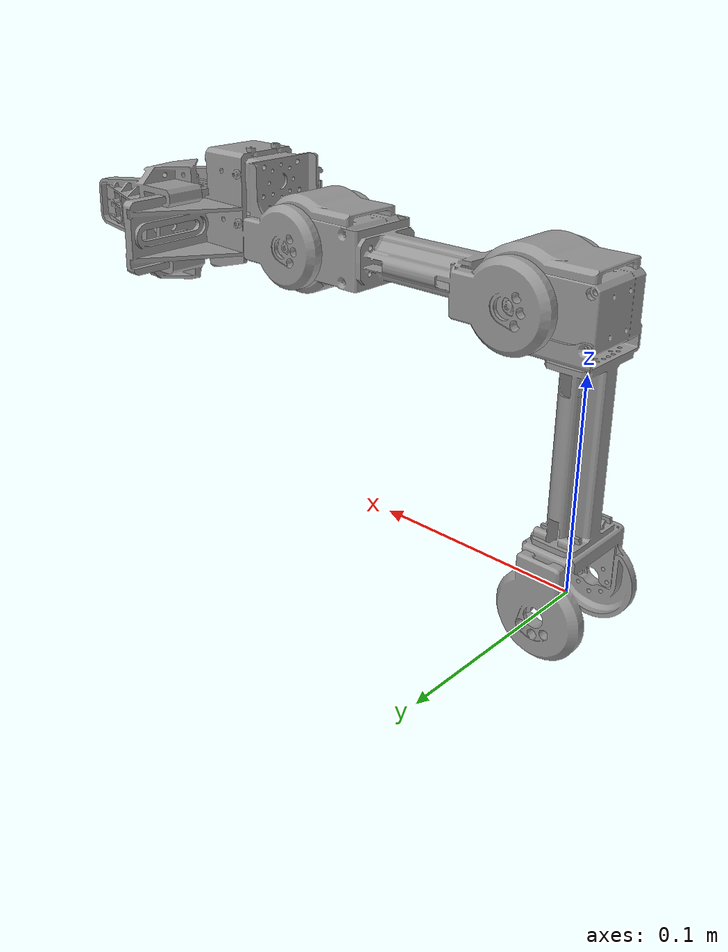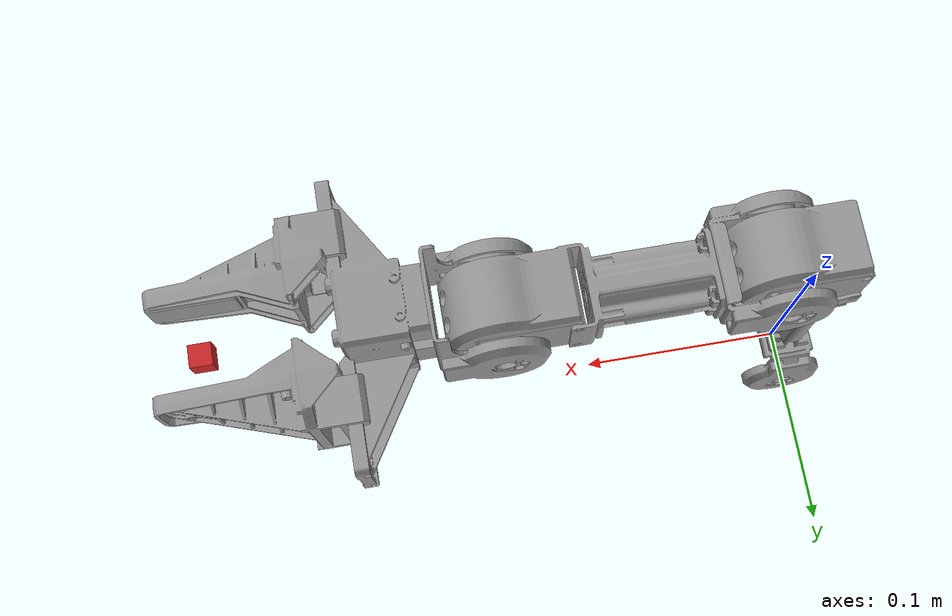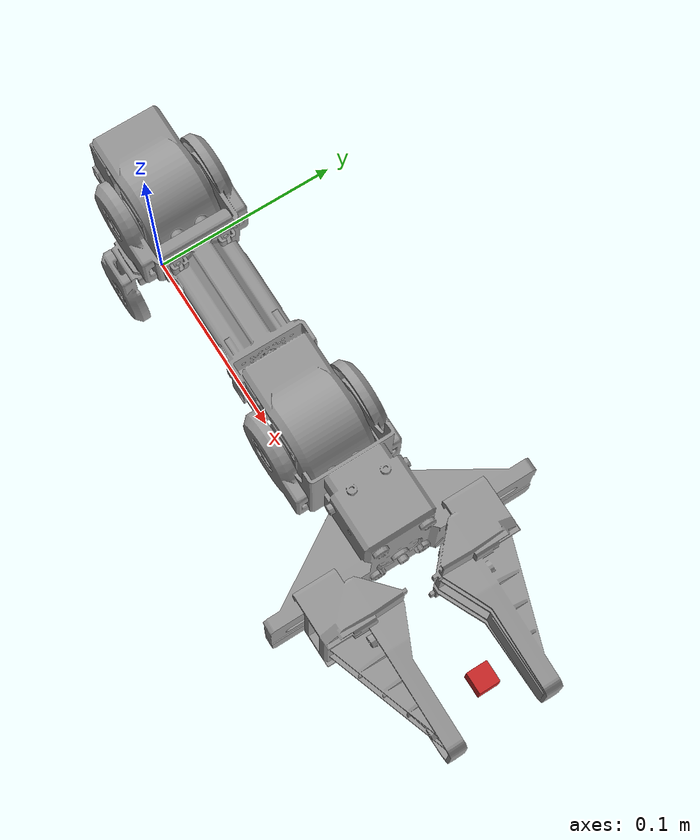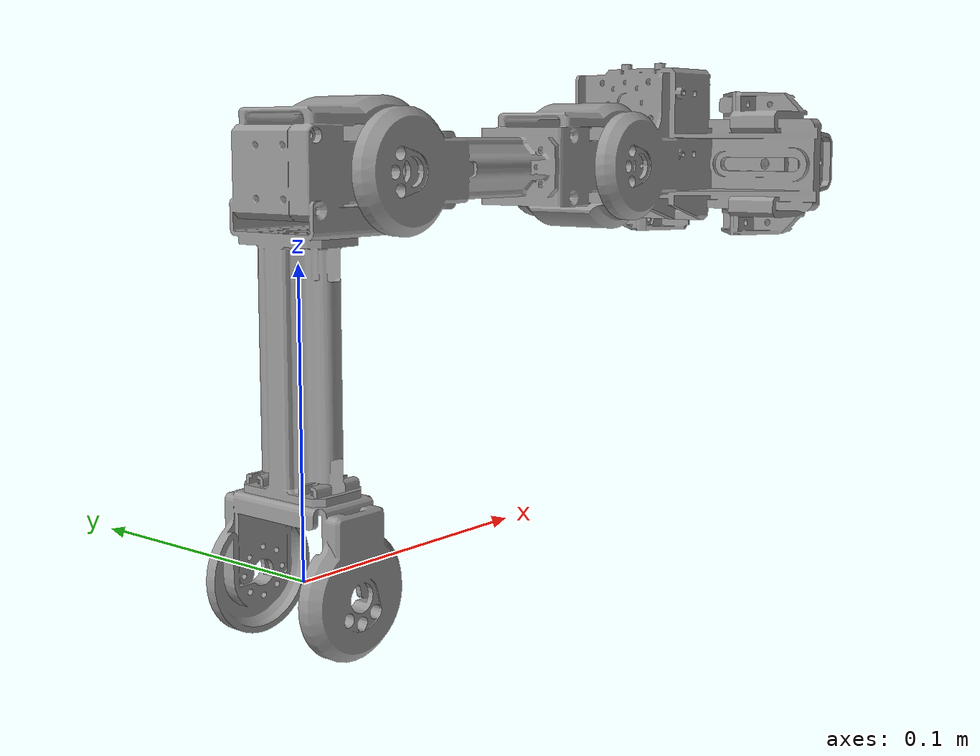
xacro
<?xml version="1.0"?>
<!-- Open_Manipulator Chain -->
<robot xmlns:xacro="http://ros.org/wiki/xacro">

  <!--  Link 3 -->
  <link name="link3">
    <visual>
      <origin xyz="0 0 0" rpy="0 0 0"/>
      <geometry>
        <mesh filename="package://open_manipulator_description/meshes/chain_link3.stl" scale="0.001 0.001 0.001"/>
      </geometry>
      <material name="grey"/>
    </visual>

    <collision>
      <origin xyz="0 0 0" rpy="0 0 0"/>
      <geometry>
        <mesh filename="package://open_manipulator_description/meshes/chain_link3.stl" scale="0.001 0.001 0.001"/>
      </geometry>
    </collision>

    <inertial>
      <origin xyz="1.0308393e-02 3.7743363e-04 1.0170197e-01" />
      <mass value="1.3850917e-01" />
      <inertia ixx="3.3055381e-04" ixy="-9.7940978e-08" ixz="-3.8505711e-05"
               iyy="3.4290447e-04" iyz="-1.5717516e-06"
               izz="6.0346498e-05" />
    </inertial>
  </link>

  <!--  Joint 3 -->
  <joint name="joint3" type="revolute">
    <parent link="link3"/>
    <child link="link4"/>
    <origin xyz="0.024 0 0.128" rpy="0 0 0"/>
    <axis xyz="0 1 0"/>
    <limit velocity="4.8" effort="1" lower="${-pi*0.3}" upper="${pi*0.44}" />
  </joint>

  <!--  Link 4 -->
  <link name="link4">
    <visual>
      <origin xyz="0 0 0" rpy="0 0 0"/>
      <geometry>
        <mesh filename="package://open_manipulator_description/meshes/chain_link4.stl" scale="0.001 0.001 0.001"/>
      </geometry>
      <material name="grey"/>
    </visual>

    <collision>
      <origin xyz="0 0 0" rpy="0 0 0"/>
      <geometry>
        <mesh filename="package://open_manipulator_description/meshes/chain_link4.stl" scale="0.001 0.001 0.001"/>
      </geometry>
    </collision>

    <inertial>
      <origin xyz="9.0909590e-02 3.8929816e-04 2.2413279e-04" />
      <mass value="1.3274562e-01" />
      <inertia ixx="3.0654178e-05" ixy="-1.2764155e-06" ixz="-2.6874417e-07"
               iyy="2.4230292e-04" iyz="1.1559550e-08"
               izz="2.5155057e-04" />
    </inertial>
  </link>

  <!--  Joint 4 -->
  <joint name="joint4" type="revolute">
    <parent link="link4"/>
    <child link="link5"/>
    <origin xyz="0.124 0.0 0.0" rpy="0 0 0"/>
    <axis xyz="0 1 0"/>
    <limit velocity="4.8" effort="1" lower="${-pi*0.57}" upper="${pi*0.65}" />
  </joint>

  <!--  Link 5 -->
  <link name="link5">
    <visual>
      <origin xyz="0 0 0" rpy="0 0 0"/>
      <geometry>
        <mesh filename="package://open_manipulator_description/meshes/chain_link5.stl" scale="0.001 0.001 0.001"/>
      </geometry>
      <material name="grey"/>
    </visual>

    <collision>
      <origin xyz="0 0 0" rpy="0 0 0"/>
      <geometry>
        <mesh filename="package://open_manipulator_description/meshes/chain_link5.stl" scale="0.001 0.001 0.001"/>
      </geometry>
    </collision>

    <inertial>
      <origin xyz="4.4206755e-02 3.6839985e-07 8.9142216e-03" />
      <mass value="1.4327573e-01" />
      <inertia ixx="8.0870749e-05" ixy="0.0" ixz="-1.0157896e-06"
               iyy="7.5980465e-05" iyz="0.0"
               izz="9.3127351e-05" />
    </inertial>
  </link>

  <!--  Gripper joint -->
  <joint name="gripper" type="prismatic">
    <parent link="link5"/>
    <child link="gripper_link"/>
    <origin xyz="0.0817 0.021 0.0" rpy="0 0 0"/>
    <axis xyz="0 1 0"/>
    <limit velocity="4.8" effort="1" lower="-0.010" upper="0.019" />
  </joint>

  <!--  Gripper link -->
  <link name="gripper_link">
    <visual>
      <origin xyz="0.0 0.0 0" rpy="0 0 0"/>
      <geometry>
        <mesh filename="package://open_manipulator_description/meshes/chain_link_grip_l.stl" scale="0.001 0.001 0.001"/>
      </geometry>
      <material name="grey"/>
    </visual>

    <collision>
      <origin xyz="0.0 0.0 0" rpy="0 0 0"/>
      <geometry>
        <mesh filename="package://open_manipulator_description/meshes/chain_link_grip_l.stl" scale="0.001 0.001 0.001"/>
      </geometry>
    </collision>

    <inertial>
      <origin xyz="0 0 0" />
      <mass value="1.0e-03" />
      <inertia ixx="1.0e-03" ixy="0.0" ixz="0.0"
               iyy="1.0e-03" iyz="0.0"
               izz="1.0e-03" />
    </inertial>
  </link>

  <!--  Gripper joint sub -->
  <joint name="gripper_sub" type="prismatic">
    <parent link="link5"/>
    <child link="gripper_link_sub"/>
    <origin xyz="0.0817 -0.021 0" rpy="0 0 0"/>
    <axis xyz="0 -1 0"/>
    <limit velocity="4.8" effort="1" lower="-0.010" upper="0.019" />
    <mimic joint="gripper" multiplier="1"/>
  </joint>

  <!--  Gripper link sub -->
  <link name="gripper_link_sub">
    <visual>
      <origin xyz="0.0 -0.0 0" rpy="0 0 0"/>
      <geometry>
        <mesh filename="package://open_manipulator_description/meshes/chain_link_grip_r.stl" scale="0.001 0.001 0.001"/>
      </geometry>
      <material name="grey"/>
    </visual>

    <collision>
      <origin xyz="0.0 -0.0 0" rpy="0 0 0"/>
      <geometry>
        <mesh filename="package://open_manipulator_description/meshes/chain_link_grip_r.stl" scale="0.001 0.001 0.001"/>
      </geometry>
    </collision>

    <inertial>
      <origin xyz="0 0 0" />
      <mass value="1.0e-03" />
      <inertia ixx="1.0e-03" ixy="0.0" ixz="0.0"
               iyy="1.0e-03" iyz="0.0"
               izz="1.0e-03" />
    </inertial>
  </link>

  <!-- end effector joint -->
  <joint name="end_effector_joint" type="fixed">
    <origin xyz="0.126 0.0 0.0" rpy="0 0 0"/>
    <parent link="link5"/>
    <child link="end_effector_link"/>
  </joint>

  <!-- end effector link -->
  <link name="end_effector_link">
    <visual>
      <origin xyz="0 0 0" rpy="0 0 0"/>
      <geometry>
        <box size="0.01 0.01 0.01" />
      </geometry>
      <material name="red"/>
     </visual>

    <inertial>
      <origin xyz="0 0 0" />
      <mass value="1.0e-03" />
      <inertia ixx="1.0e-03" ixy="0.0" ixz="0.0"
               iyy="1.0e-03" iyz="0.0"
               izz="1.0e-03" />
    </inertial>
  </link>

  <!-- Realsense Camera Joint Position -->

</robot>
